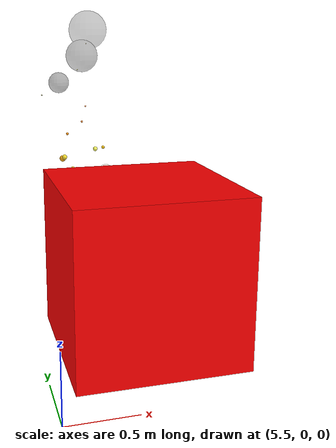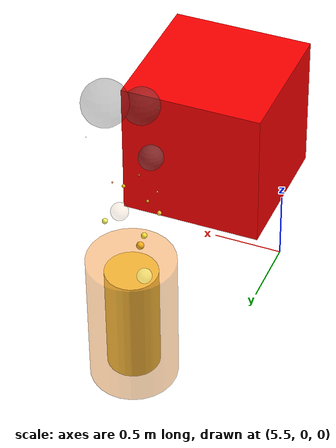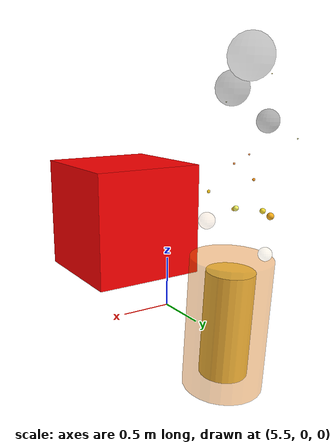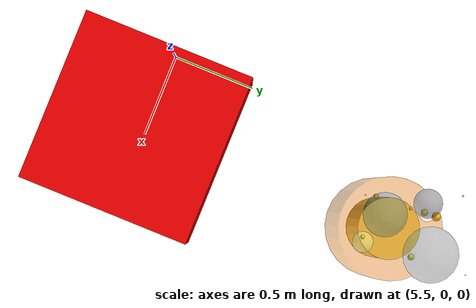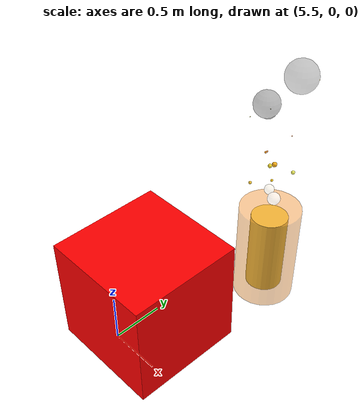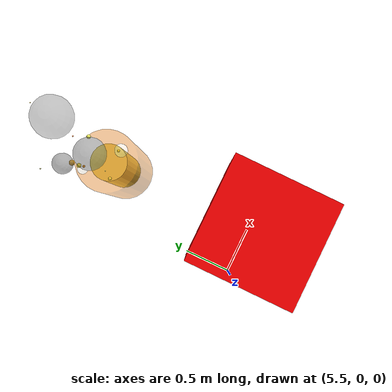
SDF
<sdf version="1.8">
 <world name="simple_trees">
  <plugin filename="ignition-gazebo-thermal-system" name="ignition::gazebo::systems::Thermal">
   <temperature>293.15</temperature>
  </plugin>
  <plugin name="ignition::gazebo::systems::Physics" filename="ignition-gazebo-physics-system"/>
  <plugin name="ignition::gazebo::systems::UserCommands" filename="ignition-gazebo-user-commands-system"/>
  <plugin name="ignition::gazebo::systems::SceneBroadcaster" filename="ignition-gazebo-scene-broadcaster-system"/>
  <plugin name="ignition::gazebo::systems::Contact" filename="ignition-gazebo-contact-system"/>
  <plugin name="ignition::gazebo::systems::Sensors" filename="libignition-gazebo-sensors-system.so"/>
  <light name="sun" type="directional">
   <pose>0 0 10 0 -0 0</pose>
   <diffuse>0.8 0.8 0.8 1</diffuse>
   <specular>0.2 0.2 0.2 1</specular>
   <attenuation>
    <range>1000</range>
    <constant>0.9</constant>
    <linear>0.01</linear>
    <quadratic>0.001</quadratic>
   </attenuation>
   <direction>-0.5 0.1 -0.9</direction>
  </light>
  <gravity>0 0 -9.81</gravity>
  <magnetic_field>6e-06 2.3e-05 -4.2e-05</magnetic_field>
  <atmosphere type="adiabatic"/>
  <physics name="default_physics" type="ignored">
   <max_step_size>0.01</max_step_size>
   <real_time_factor>1</real_time_factor>
   <real_time_update_rate>100</real_time_update_rate>
  </physics>
  <scene><ambient>1.0 1.0 1.0</ambient><background>0.8 0.8 0.8</background><shadows>1</shadows></scene>
  <spherical_coordinates>
   <latitude_deg>0.0</latitude_deg>
   <longitude_deg>0.0</longitude_deg>
   <elevation>10.0</elevation>
   <heading_deg>0</heading_deg>
   <surface_model>EARTH_WGS84</surface_model>
  </spherical_coordinates>
  <include>
   <uri>model://fire</uri>
   <name>test_fire</name>
   <pose>6 1.5 0 0 0.05 1.91</pose>
   <static>true</static>
  </include>
  <model name="hot_test_box">
   <static>true</static>
   <pose>6.0 0.0 1.0 0 0 0</pose>
   <link name="hot_link">
    <visual name="visual">
     <geometry><box><size>1 1 1</size></box></geometry>
     <material>
      <ambient>1 0 0 1</ambient>
      <diffuse>1 0 0 1</diffuse>
      <specular>0 0 0 1</specular>
      <emissive>0.8 0 0 1</emissive>
     </material>
     <plugin filename="ignition-gazebo-thermal-system" name="ignition::gazebo::systems::Thermal">
      <temperature>450.0</temperature>
     </plugin>
    </visual>
    <collision name="collision"><geometry><box><size>1 1 1</size></box></geometry></collision>
   </link>
  </model>
 </world>
</sdf>

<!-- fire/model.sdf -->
<sdf version="1.6">
  <model name="fire">
    <static>true</static>
    <link name="fire_link">
      <pose>0 0 0.5 0 0 0</pose>

      <!-- Outer fire visual (transparent) -->
      <visual name="fire_visual">
        <geometry>
          <cylinder>
            <radius>0.3</radius>
            <length>1.0</length>
          </cylinder>
        </geometry>
        <material>
          <ambient>1 0.3 0 0.4</ambient>
          <diffuse>1 0.5 0 0.4</diffuse>
          <emissive>1 0.2 0 0.3</emissive>
        </material>
      </visual>

      <!-- Inner flame effect (smaller cylinder inside) -->
      <visual name="flame_effect">
        <pose>0 0 0 0 0 0</pose>
        <geometry>
          <cylinder>
            <radius>0.18</radius>
            <length>0.8</length>
          </cylinder>
        </geometry>
        <material>
          <ambient>1 0.8 0.2 0.9</ambient>
          <diffuse>1 0.9 0.4 0.9</diffuse>
          <emissive>1 0.7 0.3 0.8</emissive>
        </material>
      </visual>

      <!-- Particle effects - Sparks and embers -->
      <visual name="spark_1">
        <pose>0.15 0.1 0.85 0 0 0</pose>
        <geometry>
          <sphere>
            <radius>0.02</radius>
          </sphere>
        </geometry>
        <material>
          <ambient>1 0.8 0 1.0</ambient>
          <diffuse>1 0.9 0.2 1.0</diffuse>
          <emissive>1 0.9 0.3 1.0</emissive>
        </material>
      </visual>

      <visual name="spark_2">
        <pose>-0.12 0.18 0.8 0 0 0</pose>
        <geometry>
          <sphere>
            <radius>0.015</radius>
          </sphere>
        </geometry>
        <material>
          <ambient>1 0.7 0.1 1.0</ambient>
          <diffuse>1 0.8 0.2 1.0</diffuse>
          <emissive>1 0.8 0.4 1.0</emissive>
        </material>
      </visual>

      <visual name="spark_3">
        <pose>0.08 -0.15 0.9 0 0 0</pose>
        <geometry>
          <sphere>
            <radius>0.018</radius>
          </sphere>
        </geometry>
        <material>
          <ambient>1 0.9 0.2 1.0</ambient>
          <diffuse>1 1.0 0.4 1.0</diffuse>
          <emissive>1 1.0 0.5 1.0</emissive>
        </material>
      </visual>

      <visual name="spark_4">
        <pose>-0.2 -0.05 0.95 0 0 0</pose>
        <geometry>
          <sphere>
            <radius>0.012</radius>
          </sphere>
        </geometry>
        <material>
          <ambient>1 0.6 0 1.0</ambient>
          <diffuse>1 0.8 0.1 1.0</diffuse>
          <emissive>1 0.9 0.2 1.0</emissive>
        </material>
      </visual>

      <visual name="spark_5">
        <pose>0.22 0.08 0.83 0 0 0</pose>
        <geometry>
          <sphere>
            <radius>0.025</radius>
          </sphere>
        </geometry>
        <material>
          <ambient>1 0.5 0 1.0</ambient>
          <diffuse>1 0.7 0.1 1.0</diffuse>
          <emissive>1 0.8 0.2 1.0</emissive>
        </material>
      </visual>

      <!-- Rising ember particles -->
      <visual name="ember_1">
        <pose>0.05 0.12 1.05 0 0 0</pose>
        <geometry>
          <sphere>
            <radius>0.01</radius>
          </sphere>
        </geometry>
        <material>
          <ambient>1 0.4 0 0.9</ambient>
          <diffuse>1 0.6 0.1 0.9</diffuse>
          <emissive>1 0.7 0.2 0.8</emissive>
        </material>
      </visual>

      <visual name="ember_2">
        <pose>-0.08 0.06 1.15 0 0 0</pose>
        <geometry>
          <sphere>
            <radius>0.008</radius>
          </sphere>
        </geometry>
        <material>
          <ambient>1 0.3 0 0.8</ambient>
          <diffuse>1 0.5 0.1 0.8</diffuse>
          <emissive>1 0.6 0.2 0.7</emissive>
        </material>
      </visual>

      <visual name="ember_3">
        <pose>0.11 -0.09 1.25 0 0 0</pose>
        <geometry>
          <sphere>
            <radius>0.006</radius>
          </sphere>
        </geometry>
        <material>
          <ambient>1 0.2 0 0.7</ambient>
          <diffuse>1 0.4 0 0.7</diffuse>
          <emissive>1 0.5 0.1 0.6</emissive>
        </material>
      </visual>

      <!-- Smoke particles (darker, larger) -->
      <visual name="smoke_1">
        <pose>0.1 0.15 1.45 0 0 0</pose>
        <geometry>
          <sphere>
            <radius>0.08</radius>
          </sphere>
        </geometry>
        <material>
          <ambient>0.3 0.3 0.3 0.4</ambient>
          <diffuse>0.4 0.4 0.4 0.5</diffuse>
          <emissive>0.1 0.1 0.1 0.3</emissive>
        </material>
      </visual>

      <visual name="smoke_2">
        <pose>-0.15 0.08 1.65 0 0 0</pose>
        <geometry>
          <sphere>
            <radius>0.12</radius>
          </sphere>
        </geometry>
        <material>
          <ambient>0.2 0.2 0.2 0.3</ambient>
          <diffuse>0.3 0.3 0.3 0.4</diffuse>
          <emissive>0.05 0.05 0.05 0.2</emissive>
        </material>
      </visual>

      <visual name="smoke_3">
        <pose>0.08 -0.12 1.85 0 0 0</pose>
        <geometry>
          <sphere>
            <radius>0.15</radius>
          </sphere>
        </geometry>
        <material>
          <ambient>0.15 0.15 0.15 0.25</ambient>
          <diffuse>0.25 0.25 0.25 0.3</diffuse>
          <emissive>0.02 0.02 0.02 0.1</emissive>
        </material>
      </visual>

      <!-- Heat distortion effects (very transparent) -->
      <visual name="heat_shimmer_1">
        <pose>0.2 0.1 0.55 0 0 0</pose>
        <geometry>
          <sphere>
            <radius>0.05</radius>
          </sphere>
        </geometry>
        <material>
          <ambient>1 0.8 0.6 0.1</ambient>
          <diffuse>1 0.9 0.7 0.15</diffuse>
          <emissive>1 0.9 0.8 0.1</emissive>
        </material>
      </visual>

      <visual name="heat_shimmer_2">
        <pose>-0.18 -0.08 0.75 0 0 0</pose>
        <geometry>
          <sphere>
            <radius>0.06</radius>
          </sphere>
        </geometry>
        <material>
          <ambient>1 0.7 0.5 0.08</ambient>
          <diffuse>1 0.8 0.6 0.12</diffuse>
          <emissive>1 0.8 0.7 0.08</emissive>
        </material>
      </visual>

      <!-- Flying sparks (smaller, higher up) -->
      <visual name="flying_spark_1">
        <pose>0.3 0.2 1.35 0 0 0</pose>
        <geometry>
          <sphere>
            <radius>0.005</radius>
          </sphere>
        </geometry>
        <material>
          <ambient>1 1 0.5 1.0</ambient>
          <diffuse>1 1 0.7 1.0</diffuse>
          <emissive>1 1 0.8 1.0</emissive>
        </material>
      </visual>

      <visual name="flying_spark_2">
        <pose>-0.25 0.18 1.55 0 0 0</pose>
        <geometry>
          <sphere>
            <radius>0.004</radius>
          </sphere>
        </geometry>
        <material>
          <ambient>1 0.9 0.3 1.0</ambient>
          <diffuse>1 1 0.5 1.0</diffuse>
          <emissive>1 1 0.6 1.0</emissive>
        </material>
      </visual>

      <visual name="flying_spark_3">
        <pose>0.28 -0.22 1.75 0 0 0</pose>
        <geometry>
          <sphere>
            <radius>0.003</radius>
          </sphere>
        </geometry>
        <material>
          <ambient>1 0.8 0.2 1.0</ambient>
          <diffuse>1 0.9 0.4 1.0</diffuse>
          <emissive>1 1 0.5 1.0</emissive>
        </material>
      </visual>

      <!-- Collision component -->
      <collision name="fire_collision">
        <geometry>
          <cylinder>
            <radius>0.3</radius>
            <length>1.0</length>
          </cylinder>
        </geometry>
      </collision>
      <!-- Thermal properties on the fire link so the camera can see it -->
      <plugin filename="libignition-gazebo-thermal-system.so" name="ignition::gazebo::systems::Thermal">
        <temperature>
          <uniform>
            <temperature>673.15</temperature>  <!-- 400°C in Kelvin -->
          </uniform>
        </temperature>
      </plugin>
    </link>

  </model>
</sdf>
